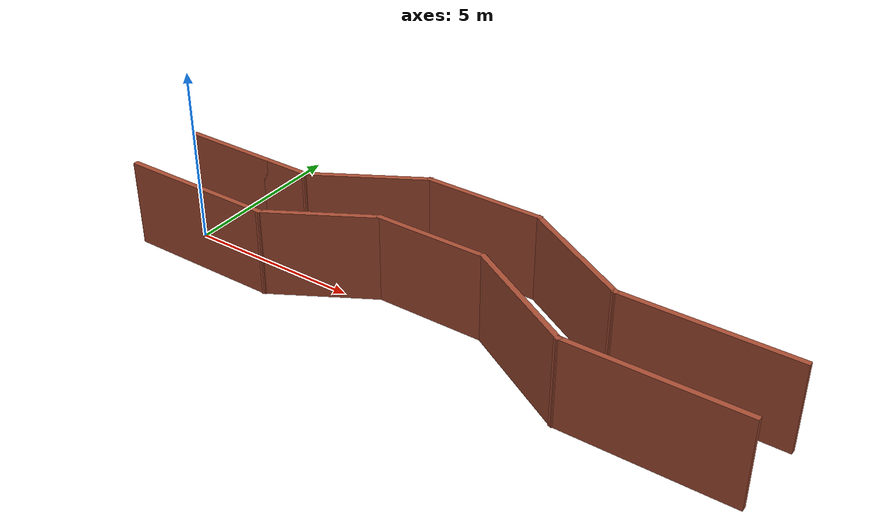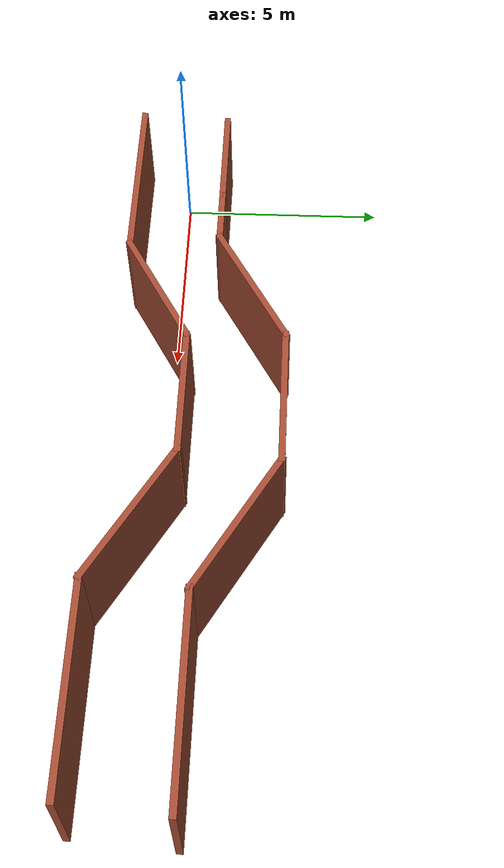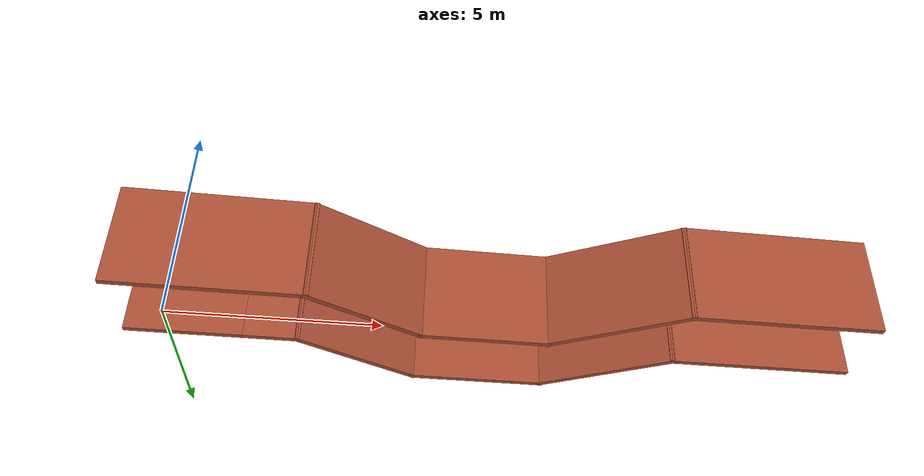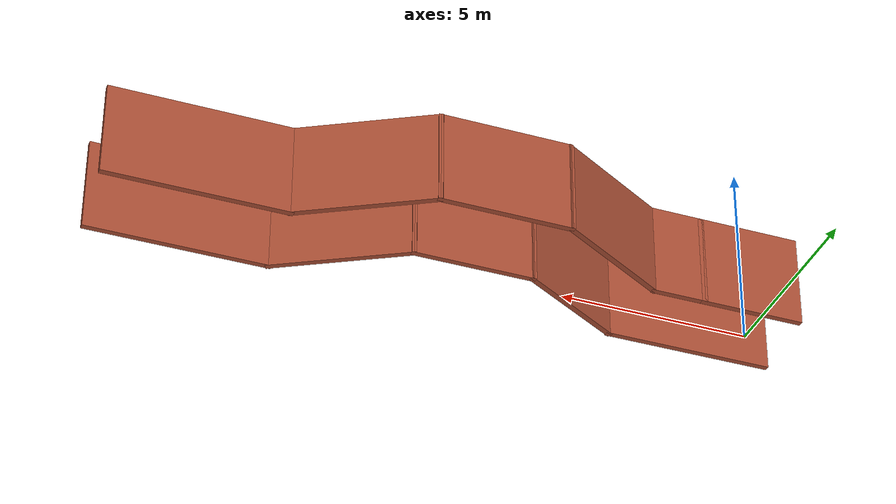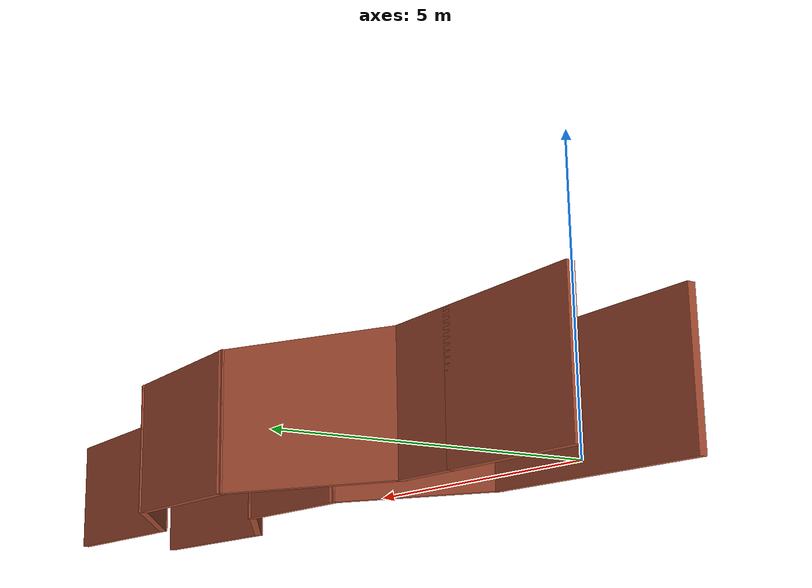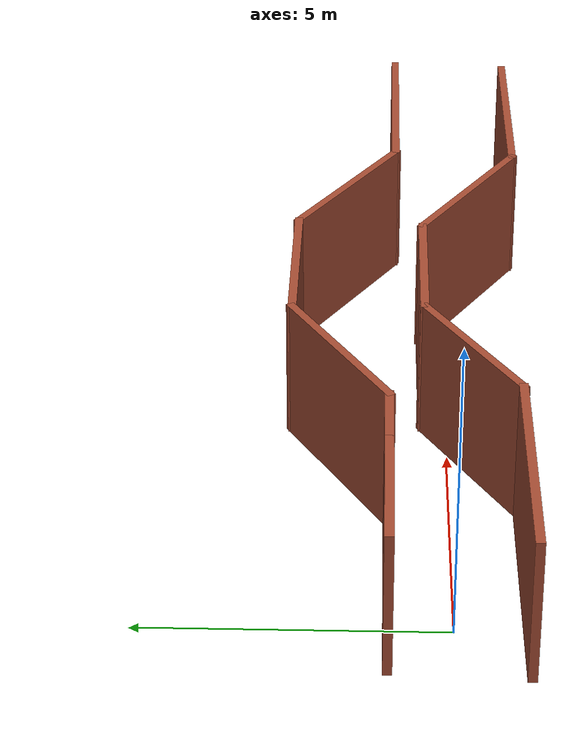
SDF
<?xml version='1.0'?>
<sdf version='1.7'>
  <model name='wall'>
    <pose>7.91499 0.658253 0 0 -0 0</pose>
    <link name='Wall_11'>
      <collision name='Wall_11_Collision'>
        <geometry>
          <box>
            <size>4.5 0.15 2.5</size>
          </box>
        </geometry>
        <pose>0 0 1.25 0 -0 0</pose>
      </collision>
      <visual name='Wall_11_Visual'>
        <pose>0 0 1.25 0 -0 0</pose>
        <geometry>
          <box>
            <size>4.5 0.15 2.5</size>
          </box>
        </geometry>
        <material>
          <script>
            <uri>file://media/materials/scripts/gazebo.material</uri>
            <name>Gazebo/Bricks</name>
          </script>
          <ambient>1 1 1 1</ambient>
        </material>
        <meta>
          <layer>0</layer>
        </meta>
      </visual>
      <pose>-6.84091 -1.79255 0 0 -0 0</pose>
    </link>
    <link name='Wall_13'>
      <collision name='Wall_13_Collision'>
        <geometry>
          <box>
            <size>1.5 0.15 2.5</size>
          </box>
        </geometry>
        <pose>0 0 1.25 0 -0 0</pose>
      </collision>
      <visual name='Wall_13_Visual'>
        <pose>0 0 1.25 0 -0 0</pose>
        <geometry>
          <box>
            <size>1.5 0.15 2.5</size>
          </box>
        </geometry>
        <material>
          <script>
            <uri>file://media/materials/scripts/gazebo.material</uri>
            <name>Gazebo/Bricks</name>
          </script>
          <ambient>1 1 1 1</ambient>
        </material>
        <meta>
          <layer>0</layer>
        </meta>
      </visual>
      <pose>-5.62796 0.36755 0 0 -0 0</pose>
    </link>
    <link name='Wall_14'>
      <collision name='Wall_14_Collision'>
        <geometry>
          <box>
            <size>3.5 0.15 2.5</size>
          </box>
        </geometry>
        <pose>0 0 1.25 0 -0 0</pose>
      </collision>
      <visual name='Wall_14_Visual'>
        <pose>0 0 1.25 0 -0 0</pose>
        <geometry>
          <box>
            <size>3.5 0.15 2.5</size>
          </box>
        </geometry>
        <material>
          <script>
            <uri>file://media/materials/scripts/gazebo.material</uri>
            <name>Gazebo/Bricks</name>
          </script>
          <ambient>1 1 1 1</ambient>
        </material>
        <meta>
          <layer>0</layer>
        </meta>
      </visual>
      <pose>-3.50237 1.20505 0 0 -0 0.523599</pose>
    </link>
    <link name='Wall_15'>
      <collision name='Wall_15_Collision'>
        <geometry>
          <box>
            <size>3.5 0.15 2.5</size>
          </box>
        </geometry>
        <pose>0 0 1.25 0 -0 0</pose>
      </collision>
      <visual name='Wall_15_Visual'>
        <pose>0 0 1.25 0 -0 0</pose>
        <geometry>
          <box>
            <size>3.5 0.15 2.5</size>
          </box>
        </geometry>
        <material>
          <script>
            <uri>file://media/materials/scripts/gazebo.material</uri>
            <name>Gazebo/Bricks</name>
          </script>
          <ambient>1 1 1 1</ambient>
        </material>
        <meta>
          <layer>0</layer>
        </meta>
      </visual>
      <pose>-0.376777 2.04255 0 0 -0 0</pose>
    </link>
    <link name='Wall_16'>
      <collision name='Wall_16_Collision'>
        <geometry>
          <box>
            <size>3.75 0.15 2.5</size>
          </box>
        </geometry>
        <pose>0 0 1.25 0 -0 0</pose>
      </collision>
      <visual name='Wall_16_Visual'>
        <pose>0 0 1.25 0 -0 0</pose>
        <geometry>
          <box>
            <size>3.75 0.15 2.5</size>
          </box>
        </geometry>
        <material>
          <script>
            <uri>file://media/materials/scripts/gazebo.material</uri>
            <name>Gazebo/Bricks</name>
          </script>
          <ambient>1 1 1 1</ambient>
        </material>
        <meta>
          <layer>0</layer>
        </meta>
      </visual>
      <pose>2.85707 1.14255 0 0 -0 -0.523599</pose>
    </link>
    <link name='Wall_18'>
      <collision name='Wall_18_Collision'>
        <geometry>
          <box>
            <size>3.25 0.15 2.5</size>
          </box>
        </geometry>
        <pose>0 0 1.25 0 -0 0</pose>
      </collision>
      <visual name='Wall_18_Visual'>
        <pose>0 0 1.25 0 -0 0</pose>
        <geometry>
          <box>
            <size>3.25 0.15 2.5</size>
          </box>
        </geometry>
        <material>
          <script>
            <uri>file://media/materials/scripts/gazebo.material</uri>
            <name>Gazebo/Bricks</name>
          </script>
          <ambient>1 1 1 1</ambient>
        </material>
        <meta>
          <layer>0</layer>
        </meta>
      </visual>
      <pose>-3.32358 -1.01755 0 0 -0 0.523599</pose>
    </link>
    <link name='Wall_19'>
      <collision name='Wall_19_Collision'>
        <geometry>
          <box>
            <size>3.25 0.15 2.5</size>
          </box>
        </geometry>
        <pose>0 0 1.25 0 -0 0</pose>
      </collision>
      <visual name='Wall_19_Visual'>
        <pose>0 0 1.25 0 -0 0</pose>
        <geometry>
          <box>
            <size>3.25 0.15 2.5</size>
          </box>
        </geometry>
        <material>
          <script>
            <uri>file://media/materials/scripts/gazebo.material</uri>
            <name>Gazebo/Bricks</name>
          </script>
          <ambient>1 1 1 1</ambient>
        </material>
        <meta>
          <layer>0</layer>
        </meta>
      </visual>
      <pose>-0.431236 -0.24255 0 0 -0 0</pose>
    </link>
    <link name='Wall_20'>
      <collision name='Wall_20_Collision'>
        <geometry>
          <box>
            <size>3.75 0.15 2.5</size>
          </box>
        </geometry>
        <pose>0 0 1.25 0 -0 0</pose>
      </collision>
      <visual name='Wall_20_Visual'>
        <pose>0 0 1.25 0 -0 0</pose>
        <geometry>
          <box>
            <size>3.75 0.15 2.5</size>
          </box>
        </geometry>
        <material>
          <script>
            <uri>file://media/materials/scripts/gazebo.material</uri>
            <name>Gazebo/Bricks</name>
          </script>
          <ambient>1 1 1 1</ambient>
        </material>
        <meta>
          <layer>0</layer>
        </meta>
      </visual>
      <pose>2.67761 -1.14255 0 0 -0 -0.523599</pose>
    </link>
    <link name='Wall_21'>
      <collision name='Wall_21_Collision'>
        <geometry>
          <box>
            <size>4.75 0.15 2.5</size>
          </box>
        </geometry>
        <pose>0 0 1.25 0 -0 0</pose>
      </collision>
      <visual name='Wall_21_Visual'>
        <pose>0 0 1.25 0 -0 0</pose>
        <geometry>
          <box>
            <size>4.75 0.15 2.5</size>
          </box>
        </geometry>
        <material>
          <script>
            <uri>file://media/materials/scripts/gazebo.material</uri>
            <name>Gazebo/Bricks</name>
          </script>
          <ambient>1 1 1 1</ambient>
        </material>
        <meta>
          <layer>0</layer>
        </meta>
      </visual>
      <pose>6.53646 -2.04255 0 0 -0 0</pose>
    </link>
    <link name='Wall_23'>
      <collision name='Wall_23_Collision'>
        <geometry>
          <box>
            <size>4.75 0.15 2.5</size>
          </box>
        </geometry>
        <pose>0 0 1.25 0 -0 0</pose>
      </collision>
      <visual name='Wall_23_Visual'>
        <pose>0 0 1.25 0 -0 0</pose>
        <geometry>
          <box>
            <size>4.75 0.15 2.5</size>
          </box>
        </geometry>
        <material>
          <script>
            <uri>file://media/materials/scripts/gazebo.material</uri>
            <name>Gazebo/Bricks</name>
          </script>
          <ambient>1 1 1 1</ambient>
        </material>
        <meta>
          <layer>0</layer>
        </meta>
      </visual>
      <pose>6.71591 0.24255 0 0 -0 0</pose>
    </link>
    <link name='Wall_8'>
      <collision name='Wall_8_Collision'>
        <geometry>
          <box>
            <size>2.75 0.15 2.5</size>
          </box>
        </geometry>
        <pose>0 0 1.25 0 -0 0</pose>
      </collision>
      <visual name='Wall_8_Visual'>
        <pose>0 0 1.25 0 -0 0</pose>
        <geometry>
          <box>
            <size>2.75 0.15 2.5</size>
          </box>
        </geometry>
        <material>
          <script>
            <uri>file://media/materials/scripts/gazebo.material</uri>
            <name>Gazebo/Bricks</name>
          </script>
          <ambient>1 1 1 1</ambient>
        </material>
        <meta>
          <layer>0</layer>
        </meta>
      </visual>
      <pose>-7.60296 0.36755 0 0 -0 0</pose>
    </link>
    <static>1</static>
  </model>
</sdf>
